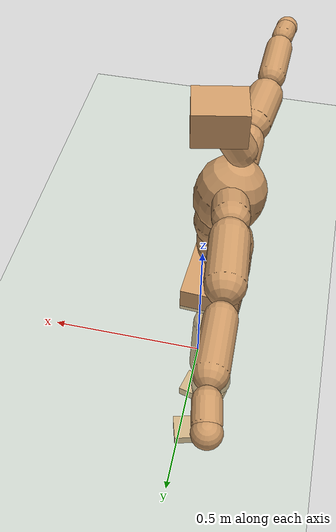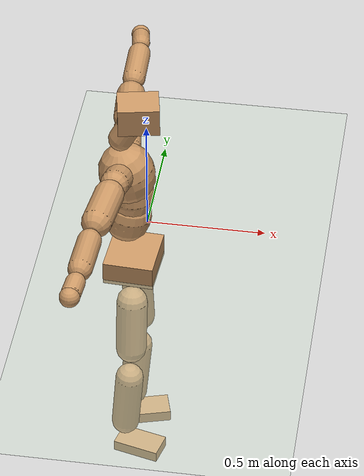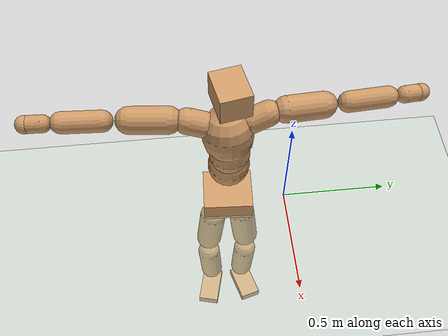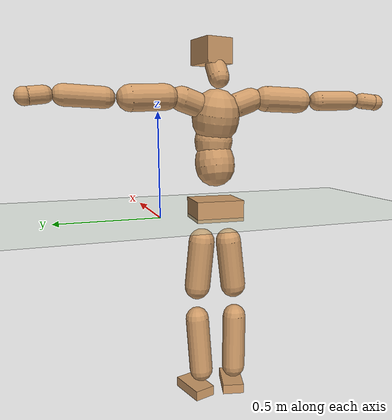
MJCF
<mujoco model="humanoid">
  <compiler coordinate="local" angle="radian"/>
  <default>
    <joint damping="0.0" armature="0.01" stiffness="0.0" limited="true"/>
    <geom conaffinity="1" condim="3" contype="7" margin="0.001" rgba="0.8 0.6 .4 1"/>
  </default>
  <asset>
    <texture type="skybox" builtin="gradient" rgb1=".4 .5 .6" rgb2="0 0 0" width="100" height="100"/>
    <texture builtin="flat" height="1278" mark="cross" markrgb="1 1 1" name="texgeom" random="0.01" rgb1="0.8 0.6 0.4" rgb2="0.8 0.6 0.4" type="cube" width="127"/>
    <texture builtin="checker" height="100" name="texplane" rgb1="0 0 0" rgb2="0.8 0.8 0.8" type="2d" width="100"/>
    <material name="MatPlane" reflectance="0.5" shininess="1" specular="1" texrepeat="60 60" texture="texplane"/>
    <material name="geom" texture="texgeom" texuniform="true"/>
  </asset>
  <worldbody>
    <light cutoff="100" diffuse="1 1 1" dir="-0 0 -1.3" directional="true" exponent="1" pos="0 0 1.3" specular=".1 .1 .1"/>
    <geom conaffinity="1" condim="3" name="floor" pos="0 0 0" rgba="0.8 0.9 0.8 1" size="100 100 .2" type="plane" material="MatPlane"/>
    <body name="Pelvis" pos="-0.002 -0.2776 0.0392">
      <freejoint name="Pelvis"/>
      <geom type="box" contype="1" conaffinity="1" density="500" pos="-0.0108 0.0006 -0.0081" size="0.1041 0.1163 0.0507" quat="0.9996 0.0000 0.0000 -0.0284" name="Pelvis"/>
      <body name="L_Hip" pos="-0.0123 0.0635 -0.0906">
        <joint name="L_Hip_x" type="hinge" pos="0 0 0" axis="1 0 0" stiffness="800" damping="80" armature="0.02" range="-180.0000 180.0000"/>
        <joint name="L_Hip_y" type="hinge" pos="0 0 0" axis="0 1 0" stiffness="800" damping="80" armature="0.02" range="-180.0000 180.0000"/>
        <joint name="L_Hip_z" type="hinge" pos="0 0 0" axis="0 0 1" stiffness="800" damping="80" armature="0.02" range="-180.0000 180.0000"/>
        <geom type="capsule" contype="1" conaffinity="1" density="500" fromto="0.0016 0.0079 -0.0789 0.0065 0.0317 -0.3157" size="0.0645" name="L_Hip"/>
        <body name="L_Knee" pos="0.0081 0.0396 -0.3946">
          <joint name="L_Knee_x" type="hinge" pos="0 0 0" axis="1 0 0" stiffness="800" damping="80" armature="0.02" range="-180.0000 180.0000"/>
          <joint name="L_Knee_y" type="hinge" pos="0 0 0" axis="0 1 0" stiffness="800" damping="80" armature="0.02" range="-180.0000 180.0000"/>
          <joint name="L_Knee_z" type="hinge" pos="0 0 0" axis="0 0 1" stiffness="800" damping="80" armature="0.02" range="-180.0000 180.0000"/>
          <geom type="capsule" contype="1" conaffinity="1" density="500" fromto="-0.0085 -0.0036 -0.0913 -0.0338 -0.0146 -0.3654" size="0.0593" name="L_Knee"/>
          <body name="L_Ankle" pos="-0.0423 -0.0182 -0.4567">
            <joint name="L_Ankle_x" type="hinge" pos="0 0 0" axis="1 0 0" stiffness="800" damping="80" armature="0.02" range="-180.0000 180.0000"/>
            <joint name="L_Ankle_y" type="hinge" pos="0 0 0" axis="0 1 0" stiffness="800" damping="80" armature="0.02" range="-180.0000 180.0000"/>
            <joint name="L_Ankle_z" type="hinge" pos="0 0 0" axis="0 0 1" stiffness="800" damping="80" armature="0.02" range="-180.0000 180.0000"/>
            <geom type="box" contype="1" conaffinity="1" density="500" pos="0.0674 0.0192 -0.0323" size="0.0965 0.0539 0.0255" quat="0.9903 0.0000 0.0000 0.1386" name="L_Ankle"/>
            <body name="L_Toe" pos="0.1348 0.0385 -0.0646">
              <joint name="L_Toe_x" type="hinge" pos="0 0 0" axis="1 0 0" stiffness="500" damping="50" armature="0.02" range="-180.0000 180.0000"/>
              <joint name="L_Toe_y" type="hinge" pos="0 0 0" axis="0 1 0" stiffness="500" damping="50" armature="0.02" range="-180.0000 180.0000"/>
              <joint name="L_Toe_z" type="hinge" pos="0 0 0" axis="0 0 1" stiffness="500" damping="50" armature="0.02" range="-180.0000 180.0000"/>
              <geom type="box" contype="1" conaffinity="1" density="500" pos="0.0000 0.0000 0.0323" size="0.0011 0.0027 0.0013" quat="0.9897 0.0000 0.0000 0.1434" name="L_Toe"/>
            </body>
          </body>
        </body>
      </body>
      <body name="R_Hip" pos="-0.0068 -0.0646 -0.1005">
        <joint name="R_Hip_x" type="hinge" pos="0 0 0" axis="1 0 0" stiffness="800" damping="80" armature="0.02" range="-180.0000 180.0000"/>
        <joint name="R_Hip_y" type="hinge" pos="0 0 0" axis="0 1 0" stiffness="800" damping="80" armature="0.02" range="-180.0000 180.0000"/>
        <joint name="R_Hip_z" type="hinge" pos="0 0 0" axis="0 0 1" stiffness="800" damping="80" armature="0.02" range="-180.0000 180.0000"/>
        <geom type="capsule" contype="1" conaffinity="1" density="500" fromto="-0.0009 -0.0085 -0.0791 -0.0035 -0.0341 -0.3164" size="0.0643" name="R_Hip"/>
        <body name="R_Knee" pos="-0.0044 -0.0426 -0.3955">
          <joint name="R_Knee_x" type="hinge" pos="0 0 0" axis="1 0 0" stiffness="800" damping="80" armature="0.02" range="-180.0000 180.0000"/>
          <joint name="R_Knee_y" type="hinge" pos="0 0 0" axis="0 1 0" stiffness="800" damping="80" armature="0.02" range="-180.0000 180.0000"/>
          <joint name="R_Knee_z" type="hinge" pos="0 0 0" axis="0 0 1" stiffness="800" damping="80" armature="0.02" range="-180.0000 180.0000"/>
          <geom type="capsule" contype="1" conaffinity="1" density="500" fromto="-0.0078 0.0044 -0.0901 -0.0311 0.0175 -0.3605" size="0.0594" name="R_Knee"/>
          <body name="R_Ankle" pos="-0.0389 0.0219 -0.4507">
            <joint name="R_Ankle_x" type="hinge" pos="0 0 0" axis="1 0 0" stiffness="800" damping="80" armature="0.02" range="-180.0000 180.0000"/>
            <joint name="R_Ankle_y" type="hinge" pos="0 0 0" axis="0 1 0" stiffness="800" damping="80" armature="0.02" range="-180.0000 180.0000"/>
            <joint name="R_Ankle_z" type="hinge" pos="0 0 0" axis="0 0 1" stiffness="800" damping="80" armature="0.02" range="-180.0000 180.0000"/>
            <geom type="box" contype="1" conaffinity="1" density="500" pos="0.0719 -0.0179 -0.0330" size="0.0992 0.0545 0.0248" quat="0.9926 0.0000 0.0000 -0.1216" name="R_Ankle"/>
            <body name="R_Toe" pos="0.1439 -0.0358 -0.066">
              <joint name="R_Toe_x" type="hinge" pos="0 0 0" axis="1 0 0" stiffness="500" damping="50" armature="0.02" range="-180.0000 180.0000"/>
              <joint name="R_Toe_y" type="hinge" pos="0 0 0" axis="0 1 0" stiffness="500" damping="50" armature="0.02" range="-180.0000 180.0000"/>
              <joint name="R_Toe_z" type="hinge" pos="0 0 0" axis="0 0 1" stiffness="500" damping="50" armature="0.02" range="-180.0000 180.0000"/>
              <geom type="box" contype="1" conaffinity="1" density="500" pos="0.0000 0.0000 0.0350" size="0.0012 0.0027 0.0013" quat="0.9935 0.0000 0.0000 -0.1135" name="R_Toe"/>
            </body>
          </body>
        </body>
      </body>
      <body name="Torso" pos="-0.0459 0.0048 0.1423">
        <joint name="Torso_x" type="hinge" pos="0 0 0" axis="1 0 0" stiffness="1000" damping="100" armature="0.02" range="-180.0000 180.0000"/>
        <joint name="Torso_y" type="hinge" pos="0 0 0" axis="0 1 0" stiffness="1000" damping="100" armature="0.02" range="-180.0000 180.0000"/>
        <joint name="Torso_z" type="hinge" pos="0 0 0" axis="0 0 1" stiffness="1000" damping="100" armature="0.02" range="-180.0000 180.0000"/>
        <geom type="capsule" contype="1" conaffinity="1" density="500" fromto="0.0174 0.0037 0.0909 0.0116 0.0025 0.0606" size="0.0955" name="Torso"/>
        <body name="Spine" pos="0.029 0.0062 0.1514">
          <joint name="Spine_x" type="hinge" pos="0 0 0" axis="1 0 0" stiffness="1000" damping="100" armature="0.02" range="-180.0000 180.0000"/>
          <joint name="Spine_y" type="hinge" pos="0 0 0" axis="0 1 0" stiffness="1000" damping="100" armature="0.02" range="-180.0000 180.0000"/>
          <joint name="Spine_z" type="hinge" pos="0 0 0" axis="0 0 1" stiffness="1000" damping="100" armature="0.02" range="-180.0000 180.0000"/>
          <geom type="capsule" contype="1" conaffinity="1" density="500" fromto="0.0021 -0.0022 0.0379 0.0014 -0.0014 0.0252" size="0.0924" name="Spine"/>
          <body name="Chest" pos="0.0035 -0.0036 0.0631">
            <joint name="Chest_x" type="hinge" pos="0 0 0" axis="1 0 0" stiffness="1000" damping="100" armature="0.02" range="-180.0000 180.0000"/>
            <joint name="Chest_y" type="hinge" pos="0 0 0" axis="0 1 0" stiffness="1000" damping="100" armature="0.02" range="-180.0000 180.0000"/>
            <joint name="Chest_z" type="hinge" pos="0 0 0" axis="0 0 1" stiffness="1000" damping="100" armature="0.02" range="-180.0000 180.0000"/>
            <geom type="capsule" contype="1" conaffinity="1" density="500" fromto="-0.0229 -0.0050 0.1010 -0.0152 -0.0034 0.0673" size="0.1133" name="Chest"/>
            <body name="Neck" pos="-0.0515 -0.014 0.245">
              <joint name="Neck_x" type="hinge" pos="0 0 0" axis="1 0 0" stiffness="500" damping="50" armature="0.02" range="-180.0000 180.0000"/>
              <joint name="Neck_y" type="hinge" pos="0 0 0" axis="0 1 0" stiffness="500" damping="50" armature="0.02" range="-180.0000 180.0000"/>
              <joint name="Neck_z" type="hinge" pos="0 0 0" axis="0 0 1" stiffness="500" damping="50" armature="0.02" range="-180.0000 180.0000"/>
              <geom type="capsule" contype="1" conaffinity="1" density="500" fromto="0.0106 0.0017 0.0185 0.0424 0.0069 0.0741" size="0.0497" name="Neck"/>
              <body name="Head" pos="0.053 0.0087 0.0926">
                <joint name="Head_x" type="hinge" pos="0 0 0" axis="1 0 0" stiffness="500" damping="50" armature="0.02" range="-180.0000 180.0000"/>
                <joint name="Head_y" type="hinge" pos="0 0 0" axis="0 1 0" stiffness="500" damping="50" armature="0.02" range="-180.0000 180.0000"/>
                <joint name="Head_z" type="hinge" pos="0 0 0" axis="0 0 1" stiffness="500" damping="50" armature="0.02" range="-180.0000 180.0000"/>
                <geom type="box" contype="1" conaffinity="1" density="500" pos="0.0275 0.0053 0.0473" size="0.0827 0.0668 0.0587" quat="0.9954 0.0000 0.0000 0.0957" name="Head"/>
              </body>
            </body>
            <body name="L_Thorax" pos="-0.0301 0.0712 0.1304">
              <joint name="L_Thorax_x" type="hinge" pos="0 0 0" axis="1 0 0" stiffness="500" damping="50" armature="0.02" range="-180.0000 180.0000"/>
              <joint name="L_Thorax_y" type="hinge" pos="0 0 0" axis="0 1 0" stiffness="500" damping="50" armature="0.02" range="-180.0000 180.0000"/>
              <joint name="L_Thorax_z" type="hinge" pos="0 0 0" axis="0 0 1" stiffness="500" damping="50" armature="0.02" range="-180.0000 180.0000"/>
              <geom type="capsule" contype="1" conaffinity="1" density="500" fromto="-0.0041 0.0250 0.0081 -0.0164 0.0998 0.0325" size="0.0574" name="L_Thorax"/>
              <body name="L_Shoulder" pos="-0.0205 0.1248 0.0406">
                <joint name="L_Shoulder_x" type="hinge" pos="0 0 0" axis="1 0 0" stiffness="500" damping="50" armature="0.02" range="-720.0000 720.0000"/>
                <joint name="L_Shoulder_y" type="hinge" pos="0 0 0" axis="0 1 0" stiffness="500" damping="50" armature="0.02" range="-720.0000 720.0000"/>
                <joint name="L_Shoulder_z" type="hinge" pos="0 0 0" axis="0 0 1" stiffness="500" damping="50" armature="0.02" range="-720.0000 720.0000"/>
                <geom type="capsule" contype="1" conaffinity="1" density="500" fromto="-0.0050 0.0541 -0.0026 -0.0199 0.2164 -0.0102" size="0.0596" name="L_Shoulder"/>
                <body name="L_Elbow" pos="-0.0249 0.2705 -0.0128">
                  <joint name="L_Elbow_x" type="hinge" pos="0 0 0" axis="1 0 0" stiffness="500" damping="50" armature="0.02" range="-720.0000 720.0000"/>
                  <joint name="L_Elbow_y" type="hinge" pos="0 0 0" axis="0 1 0" stiffness="500" damping="50" armature="0.02" range="-720.0000 720.0000"/>
                  <joint name="L_Elbow_z" type="hinge" pos="0 0 0" axis="0 0 1" stiffness="500" damping="50" armature="0.02" range="-720.0000 720.0000"/>
                  <geom type="capsule" contype="1" conaffinity="1" density="500" fromto="-0.0015 0.0566 0.0024 -0.0060 0.2264 0.0097" size="0.0468" name="L_Elbow"/>
                  <body name="L_Wrist" pos="-0.0074 0.2829 0.0121">
                    <joint name="L_Wrist_x" type="hinge" pos="0 0 0" axis="1 0 0" stiffness="300" damping="30" armature="0.02" range="-180.0000 180.0000"/>
                    <joint name="L_Wrist_y" type="hinge" pos="0 0 0" axis="0 1 0" stiffness="300" damping="30" armature="0.02" range="-180.0000 180.0000"/>
                    <joint name="L_Wrist_z" type="hinge" pos="0 0 0" axis="0 0 1" stiffness="300" damping="30" armature="0.02" range="-180.0000 180.0000"/>
                    <geom type="capsule" contype="1" conaffinity="1" density="500" fromto="-0.0034 0.0190 -0.0022 -0.0136 0.0760 -0.0089" size="0.0378" name="L_Wrist"/>
                    <body name="L_Hand" pos="-0.017 0.095 -0.0111">
                      <joint name="L_Hand_x" type="hinge" pos="0 0 0" axis="1 0 0" stiffness="300" damping="30" armature="0.02" range="-180.0000 180.0000"/>
                      <joint name="L_Hand_y" type="hinge" pos="0 0 0" axis="0 1 0" stiffness="300" damping="30" armature="0.02" range="-180.0000 180.0000"/>
                      <joint name="L_Hand_z" type="hinge" pos="0 0 0" axis="0 0 1" stiffness="300" damping="30" armature="0.02" range="-180.0000 180.0000"/>
                      <geom type="sphere" contype="1" conaffinity="1" density="500" size="0.0390" pos="0.0000 0.0000 0.0000" name="L_Hand"/>
                    </body>
                  </body>
                </body>
              </body>
            </body>
            <body name="R_Thorax" pos="-0.0327 -0.0824 0.1293">
              <joint name="R_Thorax_x" type="hinge" pos="0 0 0" axis="1 0 0" stiffness="500" damping="50" armature="0.02" range="-180.0000 180.0000"/>
              <joint name="R_Thorax_y" type="hinge" pos="0 0 0" axis="0 1 0" stiffness="500" damping="50" armature="0.02" range="-180.0000 180.0000"/>
              <joint name="R_Thorax_z" type="hinge" pos="0 0 0" axis="0 0 1" stiffness="500" damping="50" armature="0.02" range="-180.0000 180.0000"/>
              <geom type="capsule" contype="1" conaffinity="1" density="500" fromto="-0.0017 -0.0230 0.0084 -0.0068 -0.0918 0.0336" size="0.0574" name="R_Thorax"/>
              <body name="R_Shoulder" pos="-0.0085 -0.1148 0.042">
                <joint name="R_Shoulder_x" type="hinge" pos="0 0 0" axis="1 0 0" stiffness="500" damping="50" armature="0.02" range="-720.0000 720.0000"/>
                <joint name="R_Shoulder_y" type="hinge" pos="0 0 0" axis="0 1 0" stiffness="500" damping="50" armature="0.02" range="-720.0000 720.0000"/>
                <joint name="R_Shoulder_z" type="hinge" pos="0 0 0" axis="0 0 1" stiffness="500" damping="50" armature="0.02" range="-720.0000 720.0000"/>
                <geom type="capsule" contype="1" conaffinity="1" density="500" fromto="-0.0067 -0.0550 -0.0019 -0.0268 -0.2199 -0.0078" size="0.0604" name="R_Shoulder"/>
                <body name="R_Elbow" pos="-0.0335 -0.2749 -0.0097">
                  <joint name="R_Elbow_x" type="hinge" pos="0 0 0" axis="1 0 0" stiffness="500" damping="50" armature="0.02" range="-720.0000 720.0000"/>
                  <joint name="R_Elbow_y" type="hinge" pos="0 0 0" axis="0 1 0" stiffness="500" damping="50" armature="0.02" range="-720.0000 720.0000"/>
                  <joint name="R_Elbow_z" type="hinge" pos="0 0 0" axis="0 0 1" stiffness="500" damping="50" armature="0.02" range="-720.0000 720.0000"/>
                  <geom type="capsule" contype="1" conaffinity="1" density="500" fromto="-0.0016 -0.0571 0.0014 -0.0066 -0.2284 0.0057" size="0.0475" name="R_Elbow"/>
                  <body name="R_Wrist" pos="-0.0082 -0.2854 0.0071">
                    <joint name="R_Wrist_x" type="hinge" pos="0 0 0" axis="1 0 0" stiffness="300" damping="30" armature="0.02" range="-180.0000 180.0000"/>
                    <joint name="R_Wrist_y" type="hinge" pos="0 0 0" axis="0 1 0" stiffness="300" damping="30" armature="0.02" range="-180.0000 180.0000"/>
                    <joint name="R_Wrist_z" type="hinge" pos="0 0 0" axis="0 0 1" stiffness="300" damping="30" armature="0.02" range="-180.0000 180.0000"/>
                    <geom type="capsule" contype="1" conaffinity="1" density="500" fromto="-0.0021 -0.0195 -0.0019 -0.0084 -0.0781 -0.0074" size="0.0387" name="R_Wrist"/>
                    <body name="R_Hand" pos="-0.0105 -0.0976 -0.0093">
                      <joint name="R_Hand_x" type="hinge" pos="0 0 0" axis="1 0 0" stiffness="300" damping="30" armature="0.02" range="-180.0000 180.0000"/>
                      <joint name="R_Hand_y" type="hinge" pos="0 0 0" axis="0 1 0" stiffness="300" damping="30" armature="0.02" range="-180.0000 180.0000"/>
                      <joint name="R_Hand_z" type="hinge" pos="0 0 0" axis="0 0 1" stiffness="300" damping="30" armature="0.02" range="-180.0000 180.0000"/>
                      <geom type="sphere" contype="1" conaffinity="1" density="500" size="0.0398" pos="0.0000 0.0000 0.0000" name="R_Hand"/>
                    </body>
                  </body>
                </body>
              </body>
            </body>
          </body>
        </body>
      </body>
    </body>
  </worldbody>
  <actuator>
    <motor name="L_Hip_x" joint="L_Hip_x" gear="500"/>
    <motor name="L_Hip_y" joint="L_Hip_y" gear="500"/>
    <motor name="L_Hip_z" joint="L_Hip_z" gear="500"/>
    <motor name="L_Knee_x" joint="L_Knee_x" gear="500"/>
    <motor name="L_Knee_y" joint="L_Knee_y" gear="500"/>
    <motor name="L_Knee_z" joint="L_Knee_z" gear="500"/>
    <motor name="L_Ankle_x" joint="L_Ankle_x" gear="500"/>
    <motor name="L_Ankle_y" joint="L_Ankle_y" gear="500"/>
    <motor name="L_Ankle_z" joint="L_Ankle_z" gear="500"/>
    <motor name="L_Toe_x" joint="L_Toe_x" gear="500"/>
    <motor name="L_Toe_y" joint="L_Toe_y" gear="500"/>
    <motor name="L_Toe_z" joint="L_Toe_z" gear="500"/>
    <motor name="R_Hip_x" joint="R_Hip_x" gear="500"/>
    <motor name="R_Hip_y" joint="R_Hip_y" gear="500"/>
    <motor name="R_Hip_z" joint="R_Hip_z" gear="500"/>
    <motor name="R_Knee_x" joint="R_Knee_x" gear="500"/>
    <motor name="R_Knee_y" joint="R_Knee_y" gear="500"/>
    <motor name="R_Knee_z" joint="R_Knee_z" gear="500"/>
    <motor name="R_Ankle_x" joint="R_Ankle_x" gear="500"/>
    <motor name="R_Ankle_y" joint="R_Ankle_y" gear="500"/>
    <motor name="R_Ankle_z" joint="R_Ankle_z" gear="500"/>
    <motor name="R_Toe_x" joint="R_Toe_x" gear="500"/>
    <motor name="R_Toe_y" joint="R_Toe_y" gear="500"/>
    <motor name="R_Toe_z" joint="R_Toe_z" gear="500"/>
    <motor name="Torso_x" joint="Torso_x" gear="500"/>
    <motor name="Torso_y" joint="Torso_y" gear="500"/>
    <motor name="Torso_z" joint="Torso_z" gear="500"/>
    <motor name="Spine_x" joint="Spine_x" gear="500"/>
    <motor name="Spine_y" joint="Spine_y" gear="500"/>
    <motor name="Spine_z" joint="Spine_z" gear="500"/>
    <motor name="Chest_x" joint="Chest_x" gear="500"/>
    <motor name="Chest_y" joint="Chest_y" gear="500"/>
    <motor name="Chest_z" joint="Chest_z" gear="500"/>
    <motor name="Neck_x" joint="Neck_x" gear="500"/>
    <motor name="Neck_y" joint="Neck_y" gear="500"/>
    <motor name="Neck_z" joint="Neck_z" gear="500"/>
    <motor name="Head_x" joint="Head_x" gear="500"/>
    <motor name="Head_y" joint="Head_y" gear="500"/>
    <motor name="Head_z" joint="Head_z" gear="500"/>
    <motor name="L_Thorax_x" joint="L_Thorax_x" gear="500"/>
    <motor name="L_Thorax_y" joint="L_Thorax_y" gear="500"/>
    <motor name="L_Thorax_z" joint="L_Thorax_z" gear="500"/>
    <motor name="L_Shoulder_x" joint="L_Shoulder_x" gear="500"/>
    <motor name="L_Shoulder_y" joint="L_Shoulder_y" gear="500"/>
    <motor name="L_Shoulder_z" joint="L_Shoulder_z" gear="500"/>
    <motor name="L_Elbow_x" joint="L_Elbow_x" gear="500"/>
    <motor name="L_Elbow_y" joint="L_Elbow_y" gear="500"/>
    <motor name="L_Elbow_z" joint="L_Elbow_z" gear="500"/>
    <motor name="L_Wrist_x" joint="L_Wrist_x" gear="500"/>
    <motor name="L_Wrist_y" joint="L_Wrist_y" gear="500"/>
    <motor name="L_Wrist_z" joint="L_Wrist_z" gear="500"/>
    <motor name="L_Hand_x" joint="L_Hand_x" gear="500"/>
    <motor name="L_Hand_y" joint="L_Hand_y" gear="500"/>
    <motor name="L_Hand_z" joint="L_Hand_z" gear="500"/>
    <motor name="R_Thorax_x" joint="R_Thorax_x" gear="500"/>
    <motor name="R_Thorax_y" joint="R_Thorax_y" gear="500"/>
    <motor name="R_Thorax_z" joint="R_Thorax_z" gear="500"/>
    <motor name="R_Shoulder_x" joint="R_Shoulder_x" gear="500"/>
    <motor name="R_Shoulder_y" joint="R_Shoulder_y" gear="500"/>
    <motor name="R_Shoulder_z" joint="R_Shoulder_z" gear="500"/>
    <motor name="R_Elbow_x" joint="R_Elbow_x" gear="500"/>
    <motor name="R_Elbow_y" joint="R_Elbow_y" gear="500"/>
    <motor name="R_Elbow_z" joint="R_Elbow_z" gear="500"/>
    <motor name="R_Wrist_x" joint="R_Wrist_x" gear="500"/>
    <motor name="R_Wrist_y" joint="R_Wrist_y" gear="500"/>
    <motor name="R_Wrist_z" joint="R_Wrist_z" gear="500"/>
    <motor name="R_Hand_x" joint="R_Hand_x" gear="500"/>
    <motor name="R_Hand_y" joint="R_Hand_y" gear="500"/>
    <motor name="R_Hand_z" joint="R_Hand_z" gear="500"/>
  </actuator>
  <contact>
    <exclude body1="Torso" body2="Chest"/>
    <exclude body1="Head" body2="Chest"/>
    <exclude body1="R_Knee" body2="R_Toe"/>
    <exclude body1="R_Knee" body2="L_Ankle"/>
    <exclude body1="R_Knee" body2="L_Toe"/>
    <exclude body1="L_Knee" body2="L_Toe"/>
    <exclude body1="L_Knee" body2="R_Ankle"/>
    <exclude body1="L_Knee" body2="R_Toe"/>
    <exclude body1="L_Shoulder" body2="Chest"/>
    <exclude body1="R_Shoulder" body2="Chest"/>
  </contact>
  <sensor/>
  <size njmax="700" nconmax="700"/>
</mujoco>
